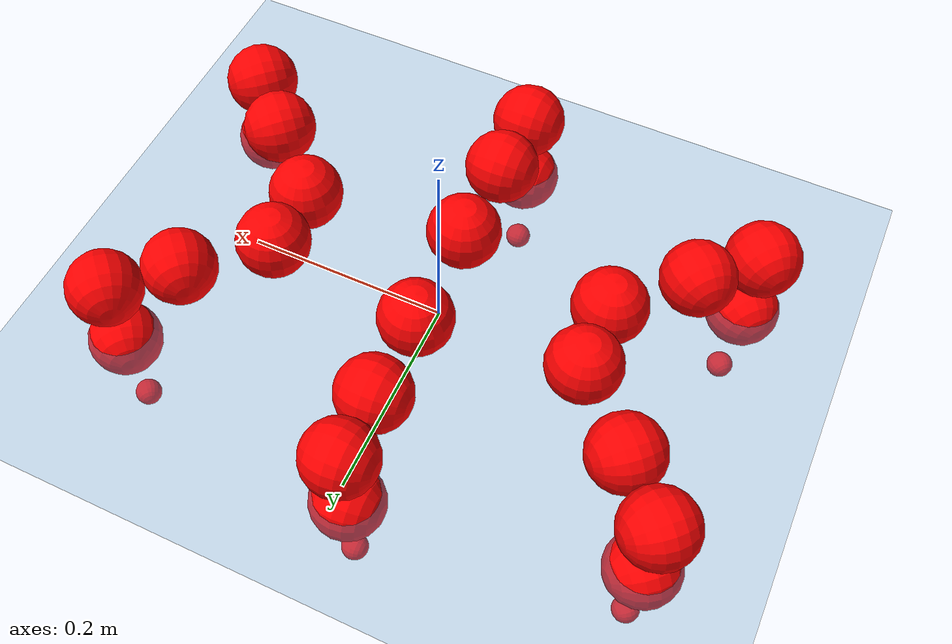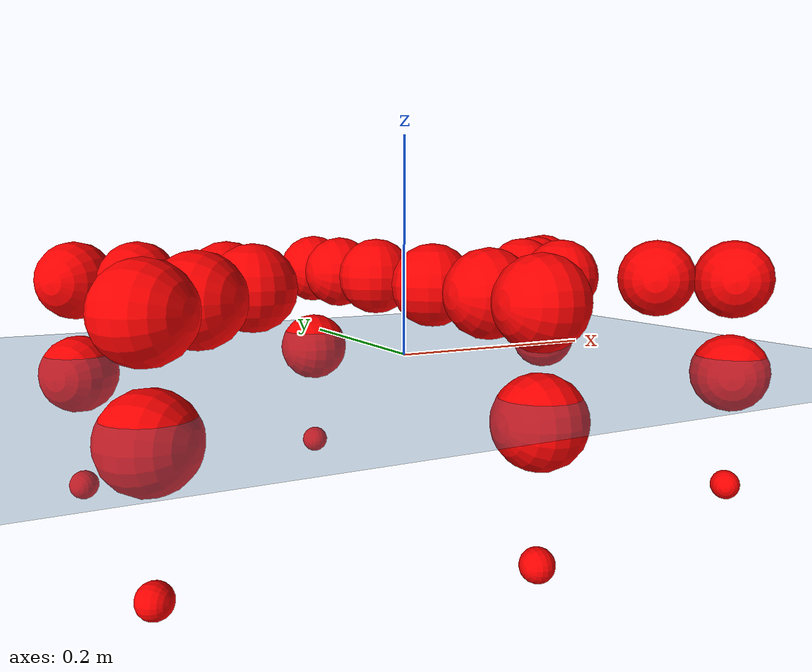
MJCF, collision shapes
<mujoco model="Golem">
  <compiler angle="radian" assetdir="assets" balanceinertia="true" inertiafromgeom="false"/>

  <option timestep="0.005" density="1.2" viscosity="2e-05"/>

  <size nkey="1"/>

  <visual>
    <quality shadowsize="8192"/>
    <map shadowclip="0.5"/>
  </visual>

  <default>
    <default class="/">
      <joint armature="0.01" damping="0.01" frictionloss="0.01"/>
      <geom contype="0" conaffinity="0" group="1" solref="-1000 -80"/>
      <site size="0.01 0.005 0.005" group="5"/>
      <general forcelimited="true" biastype="affine" gainprm="25" biasprm="0 -25 -0.5"/>
      <default class="visual">
        <geom type="mesh" group="2"/>
      </default>
      <default class="collision">
        <geom group="3"/>
      </default>
      <default class="foot">
        <geom size="0.01 0 0" condim="6" group="4" priority="1" solimp="0.015 1 0.01"/>
      </default>
      <default class="reward_collision_sphere">
        <geom group="5" rgba="1 0 0 1"/>
      </default>
    </default>
  </default>

  <asset>
    <texture type="skybox" colorspace="auto" name="//unnamed_texture_0" builtin="gradient" rgb1="0.95 0.95 0.95" rgb2="0.95 0.95 0.95" width="100" height="600"/>
    <texture type="2d" colorspace="auto" name="texplane" builtin="checker" rgb1="0.345 0.575 0.748" rgb2="0.345 0.575 0.748" markrgb="1 1 1" width="512" height="512"/>
    <material name="MatPlane" class="/" texture="texplane" texuniform="true" texrepeat="2 2" specular="0.9"/>
    <mesh name="body" class="/" file="body.stl" scale="0.001 0.001 0.001"/>
    <mesh name="coxa" class="/" file="coxa.stl" scale="0.001 0.001 0.001"/>
    <mesh name="femur" class="/" file="femur.stl" scale="0.001 0.001 0.001"/>
    <mesh name="tibia" class="/" file="tibia.stl" scale="0.001 0.001 0.001"/>
    <mesh name="tarsus" class="/" file="tarsus.stl" scale="0.001 0.001 0.001"/>
  </asset>

  <worldbody>
    <geom name="floor" class="/" size="100 100 0.125" type="plane" group="0" material="MatPlane"/>
    <light name="toplight_shadow" class="/" pos="0 0 5" dir="0.0990148 0.0990148 -0.990148" type="directional" ambient="0.04 0.04 0.04" diffuse="0.55 0.55 0.55" specular="0.12 0.12 0.12"/>
    <light name="toplight_fill" class="/" pos="0 0 5" dir="0.0990148 0.0990148 -0.990148" type="directional" castshadow="false" ambient="0.04 0.04 0.04" diffuse="0.3 0.3 0.3" specular="0.08 0.08 0.08"/>
    <body name="trunk" pos="-0.000460054 0.000499599 -0.00031751" quat="1 -1.00277e-06 -0.00015138 -3.22169e-05">
      <inertial pos="-0.000407562 -0.000484874 -0.00257071" quat="0.99999 -0.00146085 -0.00268481 0.00327482" mass="2.70902" diaginertia="0.00985935 0.00104375 0.0140694"/>
      <joint name="//unnamed_joint_0" type="free"/>
      <geom name="//unnamed_geom_1" class="/" pos="0 0 0.0684762" quat="1 0 0 0" type="mesh" rgba="0.9 0.9 0.9 1" mesh="body"/>
      <site name="imu" class="/" pos="0.128523 0.00214142 0.104703" size="0.00899189"/>
      <camera name="track" class="/" pos="0 -1.26828 0" quat="0.707107 0.707107 0 0" mode="trackcom"/>
      <camera name="ego_camera" class="/" pos="0.129153 0 0.106994" quat="-0.5 -0.5 0.5 0.5"/>
      <body name="coxa_RR" pos="-0.175564 -0.0532449 0.07049" quat="0.382723 -3.01372e-05 -8.40377e-05 -0.923863">
        <inertial pos="0.000365084 0.000930946 0.0016746" quat="1 0.000949609 -4.48746e-05 -0.000185083" mass="0.146832" diaginertia="0.00978935 0.00104832 0.0140751"/>
        <joint name="coxa_joint_RR" class="/" pos="0 0 0" axis="-0.00124084 0.00278854 -0.999995" range="-3.1217 3.14073" armature="0.00922192" damping="0" frictionloss="0.00897036"/>
        <geom name="//unnamed_geom_2" class="/" type="mesh" rgba="0.2 0.2 0.2 1" mesh="coxa"/>
        <geom name="//unnamed_geom_3" class="reward_collision_sphere" size="0.0359676" pos="-0.0298046 0 0"/>
        <body name="femur_RR" pos="0.0590862 0.00115786 -0.00156655" quat="0.500323 -0.499539 0.500078 0.500059">
          <inertial pos="0.000325519 2.59142e-05 0.000971538" quat="1 -9.8885e-05 -0.000508959 0.000381278" mass="0.144532" diaginertia="0.0097442 0.00102597 0.0138701"/>
          <joint name="femur_joint_RR" class="/" pos="0 0 0" axis="0.0004403 -0.00195345 -0.999998" range="-3.13951 3.13536" armature="0.00899511" damping="0" frictionloss="0.00867796"/>
          <geom name="//unnamed_geom_4" class="/" type="mesh" rgba="0.9 0.9 0.9 1" mesh="femur"/>
          <geom name="//unnamed_geom_5" class="reward_collision_sphere" size="0.0359676"/>
          <body name="tibia_RR" pos="0.00162 -0.0670141 -7.08696e-05" quat="6.46506e-05 1 -4.43215e-05 -6.37251e-05">
            <inertial pos="0.000264754 -0.000475916 -0.000302412" quat="0.999993 -0.00194633 0.000360303 0.00315093" mass="0.145292" diaginertia="0.0096952 0.00102546 0.0141328"/>
            <joint name="tibia_joint_RR" class="/" pos="0 0 0" axis="-0.00321122 0.00159407 0.999994" range="-3.15598 3.13245" armature="0.00893073" damping="0" frictionloss="0.00918059"/>
            <geom name="//unnamed_geom_6" class="/" type="mesh" rgba="0.2 0.2 0.2 1" mesh="tibia"/>
            <geom name="//unnamed_geom_7" class="reward_collision_sphere" size="0.0359676"/>
            <body name="tarsus_RR" pos="0.0844177 -0.000818634 -0.000204584" quat="1 7.3421e-05 9.64325e-05 0.000479149">
              <inertial pos="0.0593301 0.0002516 0.000734709" quat="0.500268 0.500095 0.499124 0.500513" mass="0.144172" diaginertia="0.00962058 0.00101382 0.0139401"/>
              <joint name="tarsus_joint_RR" class="/" pos="0 0 0" axis="-0.00173737 0.0008596 0.999998" range="-3.12253 3.12865" armature="0.00896666" damping="0.00892159" frictionloss="0.0087945"/>
              <geom name="//unnamed_geom_8" class="/" type="mesh" rgba="0.9 0.9 0.9 1" mesh="tarsus"/>
              <geom name="foot_1" class="foot" size="0.00851512" pos="0.11127 0 0" quat="0 -0.707107 0 0.707107"/>
              <geom name="//unnamed_geom_10" class="reward_collision_sphere" size="0.0359676"/>
              <geom name="//unnamed_geom_11" class="reward_collision_sphere" size="0.0134878" pos="0.1068 0 0"/>
              <site name="foot_1" class="foot" pos="0.11127 0 0" quat="0 -0.707107 0 0.707107" size="0.00899189"/>
            </body>
          </body>
        </body>
      </body>
      <body name="coxa_RM" pos="-0.000585745 -0.0836221 0.0687361" quat="0.707272 0.000340279 -0.00035415 -0.706941">
        <inertial pos="-0.000524203 0.000172835 0.000393179" quat="1 -3.2628e-05 -0.000139655 4.78977e-05" mass="0.144901" diaginertia="0.00964474 0.00102039 0.014045"/>
        <joint name="coxa_joint_RM" class="/" pos="0 0 0" axis="-0.00144709 0.000218311 -0.999999" range="-3.14249 3.13633" armature="0.00869419" damping="0.00713095" frictionloss="0.00883046"/>
        <geom name="//unnamed_geom_12" class="/" type="mesh" rgba="0.2 0.2 0.2 1" mesh="coxa"/>
        <geom name="//unnamed_geom_13" class="reward_collision_sphere" size="0.0359676" pos="-0.0298046 0 0"/>
        <body name="femur_RM" pos="0.057997 -0.000875201 -0.000395263" quat="0.500056 -0.50005 0.499665 0.500229">
          <inertial pos="0.00064213 0.000725165 0.000237774" quat="0.999999 0.00066834 0.000762479 -0.000389817" mass="0.144685" diaginertia="0.0096149 0.00101941 0.0138555"/>
          <joint name="femur_joint_RM" class="/" pos="0 0 0" axis="0.00228575 -0.00349741 -0.999991" range="-3.13719 3.13166" armature="0.00906587" damping="0.00310456" frictionloss="0.00939683"/>
          <geom name="//unnamed_geom_14" class="/" type="mesh" rgba="0.9 0.9 0.9 1" mesh="femur"/>
          <geom name="//unnamed_geom_15" class="reward_collision_sphere" size="0.0359676"/>
          <body name="tibia_RM" pos="0.00123558 -0.0676839 -0.000343498" quat="-0.000276817 1 0.000314856 -0.000131145">
            <inertial pos="0.00105893 0.000164876 -0.000156965" quat="0.99999 -0.00404157 0.00177076 0.00115219" mass="0.147983" diaginertia="0.0097852 0.00103922 0.0142374"/>
            <joint name="tibia_joint_RM" class="/" pos="0 0 0" axis="-0.000146513 -0.000687278 1" range="-3.14502 3.12084" armature="0.00898827" damping="0.00871135" frictionloss="0.00900164"/>
            <geom name="//unnamed_geom_16" class="/" type="mesh" rgba="0.2 0.2 0.2 1" mesh="tibia"/>
            <geom name="//unnamed_geom_17" class="reward_collision_sphere" size="0.0359676"/>
            <body name="tarsus_RM" pos="0.0861082 0.000826757 0.000587172" quat="1 2.44891e-07 1.0999e-07 -4.41099e-07">
              <inertial pos="0.059616 0.000690635 0.000182811" quat="0.498968 0.500645 0.499749 0.500636" mass="0.147694" diaginertia="0.00967957 0.00103429 0.0142513"/>
              <joint name="tarsus_joint_RM" class="/" pos="0 0 0" axis="0.000187058 -0.000611859 1" range="-3.12899 3.14353" armature="0.0089499" damping="0.00650024" frictionloss="0.00922312"/>
              <geom name="//unnamed_geom_18" class="/" type="mesh" rgba="0.9 0.9 0.9 1" mesh="tarsus"/>
              <geom name="foot_2" class="foot" size="0.00873517" pos="0.11127 0 0" quat="0 -0.707107 0 0.707107"/>
              <geom name="//unnamed_geom_20" class="reward_collision_sphere" size="0.0359676"/>
              <geom name="//unnamed_geom_21" class="reward_collision_sphere" size="0.0134878" pos="0.1068 0 0"/>
              <site name="foot_2" class="foot" pos="0.11127 0 0" quat="0 -0.707107 0 0.707107" size="0.00899189"/>
            </body>
          </body>
        </body>
      </body>
      <body name="coxa_RF" pos="0.176993 -0.0524656 0.069211" quat="0.923925 7.23741e-05 -2.76324e-05 -0.382572">
        <inertial pos="-0.000169826 -0.000519915 -0.000310205" quat="0.999998 -0.00171319 -0.000303996 -0.000382217" mass="0.147362" diaginertia="0.00981928 0.00103392 0.0141527"/>
        <joint name="coxa_joint_RF" class="/" pos="0 0 0" axis="0.00491721 -0.000578815 -0.999988" range="-3.12717 3.12147" armature="0.00908443" damping="0.00153386" frictionloss="0.00904437"/>
        <geom name="//unnamed_geom_22" class="/" type="mesh" rgba="0.2 0.2 0.2 1" mesh="coxa"/>
        <geom name="//unnamed_geom_23" class="reward_collision_sphere" size="0.0359676" pos="-0.0298046 0 0"/>
        <body name="femur_RF" pos="0.0592237 0.00108319 0.000261237" quat="0.499969 -0.500041 0.499971 0.500019">
          <inertial pos="0.000817703 0.000244154 -0.000236508" quat="1 0.000353732 6.04702e-05 -0.000289885" mass="0.1463" diaginertia="0.00987112 0.00103829 0.0141719"/>
          <joint name="femur_joint_RF" class="/" pos="0 0 0" axis="-0.000285556 1.30269e-06 -1" range="-3.13546 3.15454" armature="0.00892073" damping="0.00963515" frictionloss="0.00935662"/>
          <geom name="//unnamed_geom_24" class="/" type="mesh" rgba="0.9 0.9 0.9 1" mesh="femur"/>
          <geom name="//unnamed_geom_25" class="reward_collision_sphere" size="0.0359676"/>
          <body name="tibia_RF" pos="-0.000423776 -0.0681089 -0.000565184" quat="-1.5791e-05 1 -2.56837e-05 1.11823e-05">
            <inertial pos="5.8727e-05 8.24864e-05 -0.000951513" quat="1 8.27336e-05 9.60853e-05 1.92673e-05" mass="0.145293" diaginertia="0.00963688 0.00102154 0.0139445"/>
            <joint name="tibia_joint_RF" class="/" pos="0 0 0" axis="0.000143203 0.00113788 0.999999" range="-3.13537 3.12015" armature="0.0090303" damping="0.00875509" frictionloss="0.00858128"/>
            <geom name="//unnamed_geom_26" class="/" type="mesh" rgba="0.2 0.2 0.2 1" mesh="tibia"/>
            <geom name="//unnamed_geom_27" class="reward_collision_sphere" size="0.0359676"/>
            <body name="tarsus_RF" pos="0.0867192 -3.21973e-05 0.000734535" quat="1 -0.000213769 0.000155709 -4.37926e-05">
              <inertial pos="0.059828 0.000534271 0.000137637" quat="0.499402 0.499867 0.500651 0.500079" mass="0.143594" diaginertia="0.00956363 0.00101121 0.0137189"/>
              <joint name="tarsus_joint_RF" class="/" pos="0 0 0" axis="-0.00255486 -0.00331387 0.999991" stiffness="0.0238311" range="-3.14915 3.13713" armature="0.00919706" damping="0" frictionloss="0.00921737"/>
              <geom name="//unnamed_geom_28" class="/" type="mesh" rgba="0.9 0.9 0.9 1" mesh="tarsus"/>
              <geom name="foot_3" class="foot" size="0.00878302" pos="0.11127 0 0" quat="0 -0.707107 0 0.707107"/>
              <geom name="//unnamed_geom_30" class="reward_collision_sphere" size="0.0359676"/>
              <geom name="//unnamed_geom_31" class="reward_collision_sphere" size="0.0134878" pos="0.1068 0 0"/>
              <site name="foot_3" class="foot" pos="0.11127 0 0" quat="0 -0.707107 0 0.707107" size="0.00899189"/>
            </body>
          </body>
        </body>
      </body>
      <body name="coxa_LR" pos="-0.176713 0.0554855 0.0704151" quat="0.382686 -1.90676e-05 5.16243e-05 0.923879">
        <inertial pos="0.000835719 9.54196e-05 0.00173858" quat="0.999996 0.000382929 -0.0026667 0.000626391" mass="0.147506" diaginertia="0.00988998 0.00104255 0.0139585"/>
        <joint name="coxa_joint_LR" class="/" pos="0 0 0" axis="-4.31249e-05 0.000354963 -1" range="-3.12087 3.1233" armature="0.00873363" damping="0.00879482" frictionloss="0.00885738"/>
        <geom name="//unnamed_geom_32" class="/" type="mesh" rgba="0.2 0.2 0.2 1" mesh="coxa"/>
        <geom name="//unnamed_geom_33" class="reward_collision_sphere" size="0.0359676" pos="-0.0298046 0 0"/>
        <body name="femur_LR" pos="0.059766 -0.001635 -0.000857747" quat="0.499987 -0.499925 0.499954 0.500134">
          <inertial pos="-7.77501e-05 -0.00144616 0.000326137" quat="1 7.27126e-05 7.65706e-05 9.45628e-05" mass="0.145139" diaginertia="0.00958557 0.00101427 0.0138469"/>
          <joint name="femur_joint_LR" class="/" pos="0 0 0" axis="-0.00138949 0.00103769 0.999998" range="-3.13638 3.14295" armature="0.0089184" damping="0" frictionloss="0.00901781"/>
          <geom name="//unnamed_geom_34" class="/" type="mesh" rgba="0.9 0.9 0.9 1" mesh="femur"/>
          <geom name="//unnamed_geom_35" class="reward_collision_sphere" size="0.0359676"/>
          <body name="tibia_LR" pos="0.000892939 -0.0688373 -0.00282924" quat="0.000355062 1 4.18139e-05 -0.000212789">
            <inertial pos="-0.00114046 0.000459835 0.000779765" quat="1 -6.83684e-05 4.83135e-05 5.25609e-05" mass="0.146795" diaginertia="0.00977299 0.0010428 0.0140874"/>
            <joint name="tibia_joint_LR" class="/" pos="0 0 0" axis="-0.00116669 -0.000158788 -0.999999" range="-3.1574 3.14465" armature="0.00897351" damping="0.00274002" frictionloss="0.00900723"/>
            <geom name="//unnamed_geom_36" class="/" type="mesh" rgba="0.2 0.2 0.2 1" mesh="tibia"/>
            <geom name="//unnamed_geom_37" class="reward_collision_sphere" size="0.0359676"/>
            <body name="tarsus_LR" pos="0.0875885 0.000338168 0.00020275" quat="1 -0.000195198 5.27451e-05 -0.000335934">
              <inertial pos="0.0605564 -0.000279588 -8.38284e-05" quat="0.500474 0.498624 0.502066 0.498827" mass="0.145315" diaginertia="0.00963079 0.00103924 0.0140285"/>
              <joint name="tarsus_joint_LR" class="/" pos="0 0 0" axis="-0.00355064 0.00325329 -0.999988" range="-3.12464 3.15682" armature="0.00927874" damping="0" frictionloss="0.00940239"/>
              <geom name="//unnamed_geom_38" class="/" type="mesh" rgba="0.9 0.9 0.9 1" mesh="tarsus"/>
              <geom name="foot_4" class="foot" size="0.0093261" pos="0.11127 0 0" quat="0.707107 0 -0.707107 0"/>
              <geom name="//unnamed_geom_40" class="reward_collision_sphere" size="0.0359676"/>
              <geom name="//unnamed_geom_41" class="reward_collision_sphere" size="0.0134878" pos="0.1068 0 0"/>
              <site name="foot_4" class="foot" pos="0.11127 0 0" quat="0.707107 0 -0.707107 0" size="0.00899189"/>
            </body>
          </body>
        </body>
      </body>
      <body name="coxa_LM" pos="-0.00203984 0.0828442 0.0699691" quat="0.707017 3.46372e-05 5.39971e-05 0.707196">
        <inertial pos="0.000172398 0.000649804 6.83652e-05" quat="1 -8.25724e-05 5.34731e-05 3.82994e-05" mass="0.147635" diaginertia="0.00977993 0.00103616 0.0141498"/>
        <joint name="coxa_joint_LM" class="/" pos="0 0 0" axis="0.00359425 -0.00581746 -0.999977" range="-3.14308 3.14687" armature="0.00898999" damping="0.00934102" frictionloss="0.00858516"/>
        <geom name="//unnamed_geom_42" class="/" type="mesh" rgba="0.2 0.2 0.2 1" mesh="coxa"/>
        <geom name="//unnamed_geom_43" class="reward_collision_sphere" size="0.0359676" pos="-0.0298046 0 0"/>
        <body name="femur_LM" pos="0.0547057 0.000866772 -0.000603883" quat="0.499875 -0.500227 0.50001 0.499887">
          <inertial pos="-0.000842266 -0.000446226 -0.000106302" quat="0.999996 -0.00186013 0.00209755 0.000296641" mass="0.14328" diaginertia="0.00958312 0.00102763 0.0139309"/>
          <joint name="femur_joint_LM" class="/" pos="0 0 0" axis="-0.00139819 -0.00287722 0.999995" range="-3.13742 3.13764" armature="0.00878659" damping="0" frictionloss="0.00933888"/>
          <geom name="//unnamed_geom_44" class="/" type="mesh" rgba="0.9 0.9 0.9 1" mesh="femur"/>
          <geom name="//unnamed_geom_45" class="reward_collision_sphere" size="0.0359676"/>
          <body name="tibia_LM" pos="-0.000118679 -0.0664448 0.0018899" quat="-1.78861e-06 1 9.45222e-06 1.28232e-05">
            <inertial pos="-0.00102324 -0.000640825 3.49009e-05" quat="1 -0.000188337 -0.000609496 -0.000708149" mass="0.14516" diaginertia="0.00966193 0.00103115 0.013911"/>
            <joint name="tibia_joint_LM" class="/" pos="0 0 0" axis="-0.00153759 0.00262481 -0.999995" range="-3.14019 3.13905" armature="0.00897993" damping="0.00286042" frictionloss="0.00915365"/>
            <geom name="//unnamed_geom_46" class="/" type="mesh" rgba="0.2 0.2 0.2 1" mesh="tibia"/>
            <geom name="//unnamed_geom_47" class="reward_collision_sphere" size="0.0359676"/>
            <body name="tarsus_LM" pos="0.0878003 -0.000434096 -0.00117573" quat="1 4.35318e-06 1.10504e-05 2.87656e-05">
              <inertial pos="0.0599873 0.000380667 -0.000989935" quat="0.500876 0.499706 0.49925 0.500166" mass="0.14534" diaginertia="0.00979813 0.00103029 0.0140125"/>
              <joint name="tarsus_joint_LM" class="/" pos="0 0 0" axis="0.00146563 -0.00131234 -0.999998" range="-3.13782 3.14133" armature="0.00911324" damping="0.00507645" frictionloss="0.0090651"/>
              <geom name="//unnamed_geom_48" class="/" type="mesh" rgba="0.9 0.9 0.9 1" mesh="tarsus"/>
              <geom name="foot_5" class="foot" size="0.00911403" pos="0.11127 0 0" quat="0.707107 0 -0.707107 0"/>
              <geom name="//unnamed_geom_50" class="reward_collision_sphere" size="0.0359676"/>
              <geom name="//unnamed_geom_51" class="reward_collision_sphere" size="0.0134878" pos="0.1068 0 0"/>
              <site name="foot_5" class="foot" pos="0.11127 0 0" quat="0.707107 0 -0.707107 0" size="0.00899189"/>
            </body>
          </body>
        </body>
      </body>
      <body name="coxa_LF" pos="0.177165 0.0530291 0.0689755" quat="0.923822 0.000174225 -0.000209408 0.382823">
        <inertial pos="0.000381885 0.000262547 7.57064e-05" quat="0.999995 0.000155909 0.00260751 0.00153338" mass="0.147576" diaginertia="0.00968722 0.00103334 0.0142235"/>
        <joint name="coxa_joint_LF" class="/" pos="0 0 0" axis="-0.00109826 -0.0031108 -0.999995" range="-3.14815 3.14023" armature="0.00915658" damping="0.00503893" frictionloss="0.0095075"/>
        <geom name="//unnamed_geom_52" class="/" type="mesh" rgba="0.2 0.2 0.2 1" mesh="coxa"/>
        <geom name="//unnamed_geom_53" class="reward_collision_sphere" size="0.0359676" pos="-0.0298046 0 0"/>
        <body name="femur_LF" pos="0.0593537 -0.000318934 -0.000160874" quat="0.499963 -0.499961 0.499994 0.500081">
          <inertial pos="-0.00103502 -0.000319557 0.00114633" quat="1 0.000110933 0.000692434 -0.000549086" mass="0.146279" diaginertia="0.00967694 0.00102439 0.0139752"/>
          <joint name="femur_joint_LF" class="/" pos="0 0 0" axis="0.000531115 0.00169114 0.999998" stiffness="0.000102006" range="-3.14535 3.14484" armature="0.00858092" damping="0.00289947" frictionloss="0.0091549"/>
          <geom name="//unnamed_geom_54" class="/" type="mesh" rgba="0.9 0.9 0.9 1" mesh="femur"/>
          <geom name="//unnamed_geom_55" class="reward_collision_sphere" size="0.0359676"/>
          <body name="tibia_LF" pos="-3.32231e-05 -0.0691288 0.000516066" quat="-3.87382e-05 1 -1.94099e-05 -0.000554525">
            <inertial pos="0.000543238 -0.00107479 -0.000439473" quat="1 3.65573e-05 0.00012076 -9.16863e-05" mass="0.142299" diaginertia="0.00943394 0.0010112 0.0137764"/>
            <joint name="tibia_joint_LF" class="/" pos="0 0 0" axis="0.000235805 0.00136225 -0.999999" range="-3.14135 3.14347" armature="0.00861026" damping="0" frictionloss="0.00896264"/>
            <geom name="//unnamed_geom_56" class="/" type="mesh" rgba="0.2 0.2 0.2 1" mesh="tibia"/>
            <geom name="//unnamed_geom_57" class="reward_collision_sphere" size="0.0359676"/>
            <body name="tarsus_LF" pos="0.0874364 0.000395099 0.00049753" quat="1 8.26912e-05 0.000185372 3.33557e-05">
              <inertial pos="0.0600981 -0.00064114 -0.000463612" quat="0.496561 0.500282 0.502572 0.500566" mass="0.144494" diaginertia="0.0095025 0.00101718 0.0137294"/>
              <joint name="tarsus_joint_LF" class="/" pos="0 0 0" axis="-0.000791928 0.00403735 -0.999992" range="-3.12967 3.13713" armature="0.00876781" damping="0.0151984" frictionloss="0.00860368"/>
              <geom name="//unnamed_geom_58" class="/" type="mesh" rgba="0.9 0.9 0.9 1" mesh="tarsus"/>
              <geom name="foot_6" class="foot" size="0.00884236" pos="0.11127 0 0" quat="0.707107 0 -0.707107 0"/>
              <geom name="//unnamed_geom_60" class="reward_collision_sphere" size="0.0359676"/>
              <geom name="//unnamed_geom_61" class="reward_collision_sphere" size="0.0134878" pos="0.1068 0 0"/>
              <site name="foot_6" class="foot" pos="0.11127 0 0" quat="0.707107 0 -0.707107 0" size="0.00899189"/>
            </body>
          </body>
        </body>
      </body>
    </body>
  </worldbody>

  <contact>
    <pair class="/" geom1="floor" geom2="foot_1" name="//unnamed_contact_0"/>
    <pair class="/" geom1="floor" geom2="foot_2" name="//unnamed_contact_1"/>
    <pair class="/" geom1="floor" geom2="foot_3" name="//unnamed_contact_2"/>
    <pair class="/" geom1="floor" geom2="foot_4" name="//unnamed_contact_3"/>
    <pair class="/" geom1="floor" geom2="foot_5" name="//unnamed_contact_4"/>
    <pair class="/" geom1="floor" geom2="foot_6" name="//unnamed_contact_5"/>
  </contact>

  <actuator>
    <general name="coxa_joint_RR" class="/" joint="coxa_joint_RR" forcerange="-6.63718 6.63718" gainprm="21.4117" biasprm="0 -21.4117 -0.475825"/>
    <general name="femur_joint_RR" class="/" joint="femur_joint_RR" forcerange="-6.56704 6.56704" gainprm="21.4117" biasprm="0 -21.4117 -0.475825"/>
    <general name="tibia_joint_RR" class="/" joint="tibia_joint_RR" forcerange="-6.54205 6.54205" gainprm="21.4117" biasprm="0 -21.4117 -0.475825"/>
    <general name="tarsus_joint_RR" class="/" joint="tarsus_joint_RR" forcerange="-6.57827 6.57827" gainprm="21.4117" biasprm="0 -21.4117 -0.475825"/>
    <general name="coxa_joint_RM" class="/" joint="coxa_joint_RM" forcerange="-6.58125 6.58125" gainprm="21.4117" biasprm="0 -21.4117 -0.475825"/>
    <general name="femur_joint_RM" class="/" joint="femur_joint_RM" forcerange="-6.58063 6.58063" gainprm="21.4117" biasprm="0 -21.4117 -0.475825"/>
    <general name="tibia_joint_RM" class="/" joint="tibia_joint_RM" forcerange="-6.59825 6.59825" gainprm="21.4117" biasprm="0 -21.4117 -0.475825"/>
    <general name="tarsus_joint_RM" class="/" joint="tarsus_joint_RM" forcerange="-6.73767 6.73767" gainprm="21.4117" biasprm="0 -21.4117 -0.475825"/>
    <general name="coxa_joint_RF" class="/" joint="coxa_joint_RF" forcerange="-6.34299 6.34299" gainprm="21.4117" biasprm="0 -21.4117 -0.475825"/>
    <general name="femur_joint_RF" class="/" joint="femur_joint_RF" forcerange="-6.44872 6.44872" gainprm="21.4117" biasprm="0 -21.4117 -0.475825"/>
    <general name="tibia_joint_RF" class="/" joint="tibia_joint_RF" forcerange="-6.35366 6.35366" gainprm="21.4117" biasprm="0 -21.4117 -0.475825"/>
    <general name="tarsus_joint_RF" class="/" joint="tarsus_joint_RF" forcerange="-6.75337 6.75337" gainprm="21.4117" biasprm="0 -21.4117 -0.475825"/>
    <general name="coxa_joint_LR" class="/" joint="coxa_joint_LR" forcerange="-6.79049 6.79049" gainprm="21.4117" biasprm="0 -21.4117 -0.475825"/>
    <general name="femur_joint_LR" class="/" joint="femur_joint_LR" forcerange="-6.50508 6.50508" gainprm="21.4117" biasprm="0 -21.4117 -0.475825"/>
    <general name="tibia_joint_LR" class="/" joint="tibia_joint_LR" forcerange="-6.54467 6.54467" gainprm="21.4117" biasprm="0 -21.4117 -0.475825"/>
    <general name="tarsus_joint_LR" class="/" joint="tarsus_joint_LR" forcerange="-6.79069 6.79069" gainprm="21.4117" biasprm="0 -21.4117 -0.475825"/>
    <general name="coxa_joint_LM" class="/" joint="coxa_joint_LM" forcerange="-6.44286 6.44286" gainprm="21.4117" biasprm="0 -21.4117 -0.475825"/>
    <general name="femur_joint_LM" class="/" joint="femur_joint_LM" forcerange="-6.77858 6.77858" gainprm="21.4117" biasprm="0 -21.4117 -0.475825"/>
    <general name="tibia_joint_LM" class="/" joint="tibia_joint_LM" forcerange="-6.67171 6.67171" gainprm="21.4117" biasprm="0 -21.4117 -0.475825"/>
    <general name="tarsus_joint_LM" class="/" joint="tarsus_joint_LM" forcerange="-6.44511 6.44511" gainprm="21.4117" biasprm="0 -21.4117 -0.475825"/>
    <general name="coxa_joint_LF" class="/" joint="coxa_joint_LF" forcerange="-6.56794 6.56794" gainprm="21.4117" biasprm="0 -21.4117 -0.475825"/>
    <general name="femur_joint_LF" class="/" joint="femur_joint_LF" forcerange="-6.78917 6.78917" gainprm="21.4117" biasprm="0 -21.4117 -0.475825"/>
    <general name="tibia_joint_LF" class="/" joint="tibia_joint_LF" forcerange="-6.33955 6.33955" gainprm="21.4117" biasprm="0 -21.4117 -0.475825"/>
    <general name="tarsus_joint_LF" class="/" joint="tarsus_joint_LF" forcerange="-6.63531 6.63531" gainprm="21.4117" biasprm="0 -21.4117 -0.475825"/>
  </actuator>

  <sensor>
    <gyro site="imu" name="imu_angular_velocity"/>
    <velocimeter site="imu" name="imu_linear_velocity"/>
    <framelinvel objtype="site" objname="foot_1" name="foot_1_global_linear_velocity"/>
    <framelinvel objtype="site" objname="foot_2" name="foot_2_global_linear_velocity"/>
    <framelinvel objtype="site" objname="foot_3" name="foot_3_global_linear_velocity"/>
    <framelinvel objtype="site" objname="foot_4" name="foot_4_global_linear_velocity"/>
    <framelinvel objtype="site" objname="foot_5" name="foot_5_global_linear_velocity"/>
    <framelinvel objtype="site" objname="foot_6" name="foot_6_global_linear_velocity"/>
  </sensor>

  <keyframe>
    <key name="home" qpos="0 0 0.1457 1 0 0 0 0 0 0 0 0 0 0 0 0 0 0 0 0 0 0 0 0 0 0 0 0 0 0 0"/>
  </keyframe>
</mujoco>
